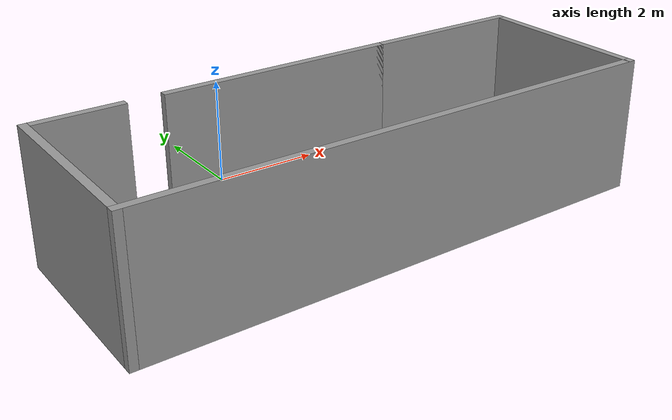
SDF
<?xml version='1.0'?>
<sdf version='1.6'>
  <model name='Hospital.world'>
    <pose frame=''>0.975 -2.875 0 0 -0 0</pose>
    <link name='Wall_0'>
      <collision name='Wall_0_Collision'>
        <geometry>
          <box>
            <size>4.5 0.15 2.5</size>
          </box>
        </geometry>
        <pose frame=''>0 0 1.25 0 -0 0</pose>
      </collision>
      <visual name='Wall_0_Visual'>
        <pose frame=''>0 0 1.25 0 -0 0</pose>
        <geometry>
          <box>
            <size>4.5 0.15 2.5</size>
          </box>
        </geometry>
        <material>
          <script>
            <uri>file://media/materials/scripts/gazebo.material</uri>
            <name>Gazebo/Grey</name>
          </script>
          <ambient>1 1 1 1</ambient>
        </material>
        <meta>
          <layer>0</layer>
        </meta>
      </visual>
      <pose frame=''>-0.35 1.675 0 0 -0 0</pose>
    </link>
    <link name='Wall_1'>
      <collision name='Wall_1_Collision'>
        <geometry>
          <box>
            <size>0.15 0.15 2.5</size>
          </box>
        </geometry>
        <pose frame=''>0 0 1.25 0 -0 0</pose>
      </collision>
      <visual name='Wall_1_Visual'>
        <pose frame=''>0 0 1.25 0 -0 0</pose>
        <geometry>
          <box>
            <size>0.15 0.15 2.5</size>
          </box>
        </geometry>
        <material>
          <script>
            <uri>file://media/materials/scripts/gazebo.material</uri>
            <name>Gazebo/Grey</name>
          </script>
          <ambient>1 1 1 1</ambient>
        </material>
        <meta>
          <layer>0</layer>
        </meta>
      </visual>
      <pose frame=''>1.825 1.675 0 0 -0 0</pose>
    </link>
    <link name='Wall_2'>
      <collision name='Wall_2_Collision'>
        <geometry>
          <box>
            <size>3.25 0.15 2.5</size>
          </box>
        </geometry>
        <pose frame=''>0 0 1.25 0 -0 0</pose>
      </collision>
      <visual name='Wall_2_Visual'>
        <pose frame=''>0 0 1.25 0 -0 0</pose>
        <geometry>
          <box>
            <size>3.25 0.15 2.5</size>
          </box>
        </geometry>
        <material>
          <script>
            <uri>file://media/materials/scripts/gazebo.material</uri>
            <name>Gazebo/Grey</name>
          </script>
          <ambient>1 1 1 1</ambient>
        </material>
        <meta>
          <layer>0</layer>
        </meta>
      </visual>
      <pose frame=''>3.375 1.675 0 0 -0 0</pose>
    </link>
    <link name='Wall_3'>
      <collision name='Wall_3_Collision'>
        <geometry>
          <box>
            <size>3.5 0.15 2.5</size>
          </box>
        </geometry>
        <pose frame=''>0 0 1.25 0 -0 0</pose>
      </collision>
      <visual name='Wall_3_Visual'>
        <pose frame=''>0 0 1.25 0 -0 0</pose>
        <geometry>
          <box>
            <size>3.5 0.15 2.5</size>
          </box>
        </geometry>
        <material>
          <script>
            <uri>file://media/materials/scripts/gazebo.material</uri>
            <name>Gazebo/Grey</name>
          </script>
          <ambient>1 1 1 1</ambient>
        </material>
        <meta>
          <layer>0</layer>
        </meta>
      </visual>
      <pose frame=''>4.925 -0 0 0 -0 -1.5708</pose>
    </link>
    <link name='Wall_4'>
      <collision name='Wall_4_Collision'>
        <geometry>
          <box>
            <size>10 0.15 2.5</size>
          </box>
        </geometry>
        <pose frame=''>0 0 1.25 0 -0 0</pose>
      </collision>
      <visual name='Wall_4_Visual'>
        <pose frame=''>0 0 1.25 0 -0 0</pose>
        <geometry>
          <box>
            <size>10 0.15 2.5</size>
          </box>
        </geometry>
        <material>
          <script>
            <uri>file://media/materials/scripts/gazebo.material</uri>
            <name>Gazebo/Grey</name>
          </script>
          <ambient>1 1 1 1</ambient>
        </material>
        <meta>
          <layer>0</layer>
        </meta>
      </visual>
      <pose frame=''>-0 -1.675 0 0 -0 3.14159</pose>
    </link>
    <link name='Wall_5'>
      <collision name='Wall_5_Collision'>
        <geometry>
          <box>
            <size>3.5 0.15 2.5</size>
          </box>
        </geometry>
        <pose frame=''>0 0 1.25 0 -0 0</pose>
      </collision>
      <visual name='Wall_5_Visual'>
        <pose frame=''>0 0 1.25 0 -0 0</pose>
        <geometry>
          <box>
            <size>3.5 0.15 2.5</size>
          </box>
        </geometry>
        <material>
          <script>
            <uri>file://media/materials/scripts/gazebo.material</uri>
            <name>Gazebo/Grey</name>
          </script>
          <ambient>1 1 1 1</ambient>
        </material>
        <meta>
          <layer>0</layer>
        </meta>
      </visual>
      <pose frame=''>-4.925 -0 0 0 -0 1.5708</pose>
    </link>
    <link name='Wall_8'>
      <collision name='Wall_8_Collision'>
        <geometry>
          <box>
            <size>1.75 0.15 2.5</size>
          </box>
        </geometry>
        <pose frame=''>0 0 1.25 0 -0 0</pose>
      </collision>
      <visual name='Wall_8_Visual'>
        <pose frame=''>0 0 1.25 0 -0 0</pose>
        <geometry>
          <box>
            <size>1.75 0.15 2.5</size>
          </box>
        </geometry>
        <material>
          <script>
            <uri>file://media/materials/scripts/gazebo.material</uri>
            <name>Gazebo/Grey</name>
          </script>
          <ambient>1 1 1 1</ambient>
        </material>
        <meta>
          <layer>0</layer>
        </meta>
      </visual>
      <pose frame=''>-4.125 1.675 0 0 -0 0</pose>
    </link>
    <static>1</static>
  </model>
</sdf>
